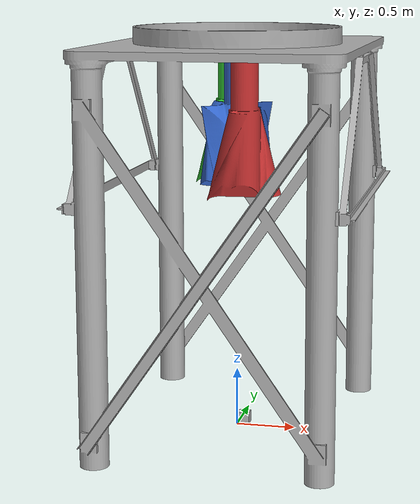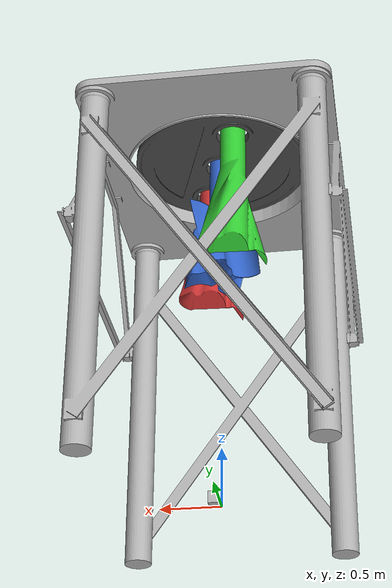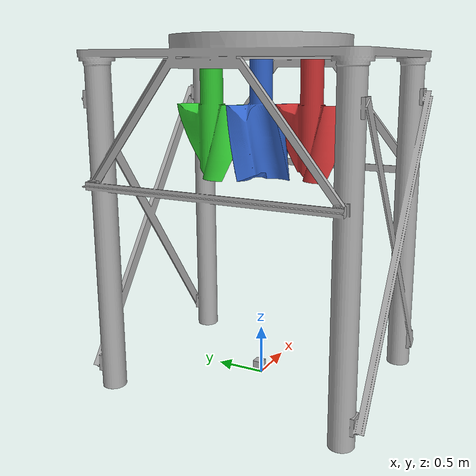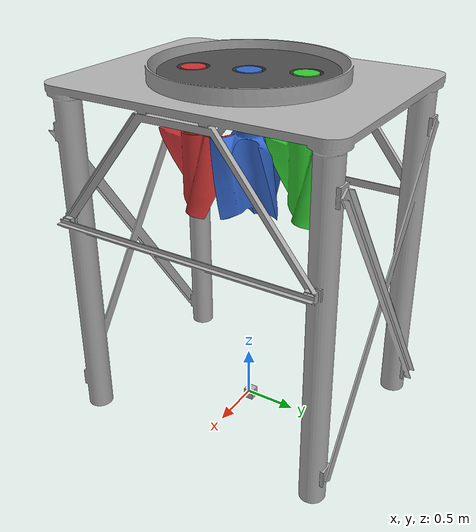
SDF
<?xml version="1.0" ?>
<sdf version="1.6">
  <model name="planetary_mixer">
    <static>true</static>
    <self_collide>false</self_collide>
    <allow_auto_disable>true</allow_auto_disable>

    <link name="base_link">
      <pose>0 0 0 0 0 0</pose>
      <inertial>
        <pose>0 0 0.25 0 0 0</pose>
        <mass>180.0</mass>
        <inertia>
          <ixx>9.45</ixx> <ixy>0.0</ixy> <ixz>0.0</ixz>
          <iyy>9.45</iyy> <iyz>0.0</iyz> <izz>8.10</izz>
        </inertia>
      </inertial>
      <visual name="base_visual">
        <geometry>
          <mesh>
            <uri>PACKAGE_PATH/meshes/structure.stl</uri>
            <scale>1 1 1</scale>
          </mesh>
        </geometry>
        <material>
          <ambient>0.7 0.7 0.7 1.0</ambient>
          <diffuse>0.7 0.7 0.7 1.0</diffuse>
        </material>
      </visual>
      <collision name="base_collision">
        <pose>0 0 0 0 0 0</pose>
        <geometry>
          <mesh>
            <uri>PACKAGE_PATH/meshes/structure.stl</uri>
            <scale>1 1 1</scale>
          </mesh>
        </geometry>
      </collision>
    </link>

    <link name="shroud_link">
      <pose>0 0 0 0 0 0</pose>
      <velocity_decay>
        <linear>0.2</linear>
        <angular>0.5</angular>
      </velocity_decay>
      <inertial>
        <pose>0 0 0.15 0 0 0</pose>
        <mass>35.0</mass>
        <inertia>
          <ixx>0.75</ixx> <ixy>0.0</ixy> <ixz>0.0</ixz>
          <iyy>0.75</iyy> <iyz>0.0</iyz> <izz>0.57</izz>
        </inertia>
      </inertial>
      <visual name="shroud_visual">
        <geometry>
          <mesh>
            <uri>PACKAGE_PATH/meshes/shroud.stl</uri>
            <scale>1 1 1</scale>
          </mesh>
        </geometry>
        <material>
          <ambient>0.3 0.3 0.3 1.0</ambient>
          <diffuse>0.3 0.3 0.3 1.0</diffuse>
        </material>
      </visual>
      <collision name="shroud_collision">
        <pose>0 0 0 0 0 0</pose>
        <geometry>
          <mesh>
            <uri>PACKAGE_PATH/meshes/shroud.stl</uri>
            <scale>1 1 1</scale>
          </mesh>
        </geometry>
      </collision>
    </link>

    <joint name="shroud_joint" type="revolute">
      <parent>base_link</parent>
      <child>shroud_link</child>
      <pose>0 0 0 0 0 0</pose>
      <axis>
        <xyz>0 0 1</xyz>
        <limit>
          <lower>-1e16</lower>
          <upper>1e16</upper>
        </limit>
        <dynamics>
          <damping>2.0</damping>
          <friction>0.5</friction>
        </dynamics>
      </axis>
    </joint>

    <link name="sun_link">
      <pose>0 0 0 0 0 0</pose>
      <velocity_decay>
        <linear>0.2</linear>
        <angular>0.5</angular>
      </velocity_decay>
      <inertial>
        <pose>0 0 0.10 0 0 0</pose>
        <mass>15.0</mass>
        <inertia>
          <ixx>0.092</ixx> <ixy>0.0</ixy> <ixz>0.0</ixz>
          <iyy>0.092</iyy> <iyz>0.0</iyz> <izz>0.027</izz>
        </inertia>
      </inertial>
      <visual name="sun_visual">
        <geometry>
          <mesh>
            <uri>PACKAGE_PATH/meshes/middle_blade.stl</uri>
            <scale>1 1 1</scale>
          </mesh>
        </geometry>
        <material>
          <ambient>0.2 0.4 0.8 1.0</ambient>
          <diffuse>0.2 0.4 0.8 1.0</diffuse>
        </material>
      </visual>
      <collision name="sun_collision">
        <pose>0 0 0 0 0 0</pose>
        <geometry>
          <mesh>
            <uri>PACKAGE_PATH/meshes/middle_blade.stl</uri>
            <scale>1 1 1</scale>
          </mesh>
        </geometry>
      </collision>
    </link>

    <joint name="sun_joint" type="revolute">
      <parent>base_link</parent>
      <child>sun_link</child>
      <pose>0 0 0 0 0 0</pose>
      <axis>
        <xyz>0 0 1</xyz>
        <limit>
          <lower>-1e16</lower>
          <upper>1e16</upper>
        </limit>
        <dynamics>
          <damping>1.5</damping>
          <friction>0.4</friction>
        </dynamics>
      </axis>
    </joint>

    <link name="planet_1_carrier">
      <pose>0 0 0 0 0 0</pose>
      <velocity_decay>
        <linear>0.2</linear>
        <angular>0.8</angular>
      </velocity_decay>
      <inertial>
        <mass>5.0</mass>
        <inertia>
          <ixx>0.0022</ixx> <ixy>0.0</ixy> <ixz>0.0</ixz>
          <iyy>0.0022</iyy> <iyz>0.0</iyz> <izz>0.0023</izz>
        </inertia>
      </inertial>
    </link>

    <joint name="planet_1_orbit_joint" type="revolute">
      <parent>base_link</parent>
      <child>planet_1_carrier</child>
      <pose>0 0 0 0 0 0</pose>
      <axis>
        <xyz>0 0 1</xyz>
        <limit>
          <lower>-1e16</lower>
          <upper>1e16</upper>
        </limit>
        <dynamics>
          <damping>4.0</damping>
          <friction>1.0</friction>
        </dynamics>
      </axis>
    </joint>

    <link name="planet_1_link">
      <pose>0.155943 -0.456764 0 0 0 0</pose>
      <velocity_decay>
        <linear>0.2</linear>
        <angular>0.8</angular>
      </velocity_decay>
      <inertial>
        <pose>0 0 0.10 0 0 0</pose>
        <mass>12.0</mass>
        <inertia>
          <ixx>0.069</ixx> <ixy>0.0</ixy> <ixz>0.0</ixz>
          <iyy>0.069</iyy> <iyz>0.0</iyz> <izz>0.012</izz>
        </inertia>
      </inertial>
      <visual name="planet_1_visual">
        <pose>-0.155943 0.456764 0 0 0 0</pose>
        <geometry>
          <mesh>
            <uri>PACKAGE_PATH/meshes/blade_1.stl</uri>
            <scale>1 1 1</scale>
          </mesh>
        </geometry>
        <material>
          <ambient>0.8 0.2 0.2 1.0</ambient>
          <diffuse>0.8 0.2 0.2 1.0</diffuse>
        </material>
      </visual>
      <collision name="planet_1_collision">
        <pose>-0.155943 0.456764 0 0 0 0</pose>
        <geometry>
          <mesh>
            <uri>PACKAGE_PATH/meshes/blade_1.stl</uri>
            <scale>1 1 1</scale>
          </mesh>
        </geometry>
      </collision>
    </link>

    <joint name="planet_1_spin_joint" type="revolute">
      <parent>planet_1_carrier</parent>
      <child>planet_1_link</child>
      <pose>0 0 0 0 0 0</pose>
      <axis>
        <xyz>0 0 1</xyz>
        <limit>
          <lower>-1e16</lower>
          <upper>1e16</upper>
        </limit>
        <dynamics>
          <damping>4.0</damping>
          <friction>1.0</friction>
        </dynamics>
      </axis>
    </joint>

    <link name="planet_2_carrier">
      <pose>0 0 0 0 0 0</pose>
      <velocity_decay>
        <linear>0.2</linear>
        <angular>0.8</angular>
      </velocity_decay>
      <inertial>
        <mass>5.0</mass>
        <inertia>
          <ixx>0.0022</ixx> <ixy>0.0</ixy> <ixz>0.0</ixz>
          <iyy>0.0022</iyy> <iyz>0.0</iyz> <izz>0.0023</izz>
        </inertia>
      </inertial>
    </link>

    <joint name="planet_2_orbit_joint" type="revolute">
      <parent>base_link</parent>
      <child>planet_2_carrier</child>
      <pose>0 0 0 0 0 0</pose>
      <axis>
        <xyz>0 0 1</xyz>
        <limit>
          <lower>-1e16</lower>
          <upper>1e16</upper>
        </limit>
        <dynamics>
          <damping>4.0</damping>
          <friction>1.0</friction>
        </dynamics>
      </axis>
    </joint>

    <link name="planet_2_link">
      <pose>-0.155847 0.456481 0 0 0 0</pose>
      <velocity_decay>
        <linear>0.2</linear>
        <angular>0.8</angular>
      </velocity_decay>
      <inertial>
        <pose>0 0 0.10 0 0 0</pose>
        <mass>12.0</mass>
        <inertia>
          <ixx>0.069</ixx> <ixy>0.0</ixy> <ixz>0.0</ixz>
          <iyy>0.069</iyy> <iyz>0.0</iyz> <izz>0.012</izz>
        </inertia>
      </inertial>
      <visual name="planet_2_visual">
        <pose>0.155847 -0.456481 0 0 0 0</pose>
        <geometry>
          <mesh>
            <uri>PACKAGE_PATH/meshes/blade_2.stl</uri>
            <scale>1 1 1</scale>
          </mesh>
        </geometry>
        <material>
          <ambient>0.2 0.8 0.2 1.0</ambient>
          <diffuse>0.2 0.8 0.2 1.0</diffuse>
        </material>
      </visual>
      <collision name="planet_2_collision">
        <pose>0.155847 -0.456481 0 0 0 0</pose>
        <geometry>
          <mesh>
            <uri>PACKAGE_PATH/meshes/blade_2.stl</uri>
            <scale>1 1 1</scale>
          </mesh>
        </geometry>
      </collision>
    </link>

    <joint name="planet_2_spin_joint" type="revolute">
      <parent>planet_2_carrier</parent>
      <child>planet_2_link</child>
      <pose>0 0 0 0 0 0</pose>
      <axis>
        <xyz>0 0 1</xyz>
        <limit>
          <lower>-1e16</lower>
          <upper>1e16</upper>
        </limit>
        <dynamics>
          <damping>4.0</damping>
          <friction>1.0</friction>
        </dynamics>
      </axis>
    </joint>

    <plugin name="gazebo_ros2_control" filename="libgazebo_ros2_control.so">
      <parameters>/home/nithish/ur10e_force_mode_ws/src/ur10e_simulation_pkg/config/controllers.yaml</parameters>
      <ros>
        <namespace>/mixer</namespace>
      </ros>
    </plugin>

    <ros2_control name="mixer_planetary_system" type="system">
      <hardware>
        <plugin>gazebo_ros2_control/GazeboSystem</plugin>
      </hardware>

      <joint name="sun_joint">
        <command_interface name="position"/>
        <state_interface name="position"/>
        <state_interface name="velocity"/>
      </joint>

      <joint name="shroud_joint">
        <command_interface name="position"/>
        <state_interface name="position"/>
        <state_interface name="velocity"/>
      </joint>

      <joint name="planet_1_orbit_joint">
        <command_interface name="position"/>
        <state_interface name="position"/>
        <state_interface name="velocity"/>
      </joint>

      <joint name="planet_1_spin_joint">
        <command_interface name="position"/>
        <state_interface name="position"/>
        <state_interface name="velocity"/>
      </joint>

      <joint name="planet_2_orbit_joint">
        <command_interface name="position"/>
        <state_interface name="position"/>
        <state_interface name="velocity"/>
      </joint>

      <joint name="planet_2_spin_joint">
        <command_interface name="position"/>
        <state_interface name="position"/>
        <state_interface name="velocity"/>
      </joint>
    </ros2_control>

  </model>
</sdf>
